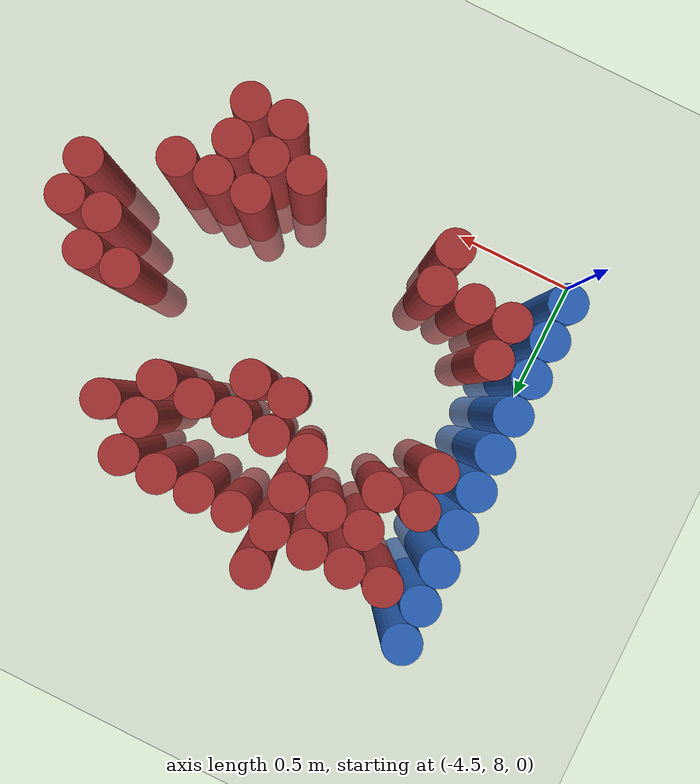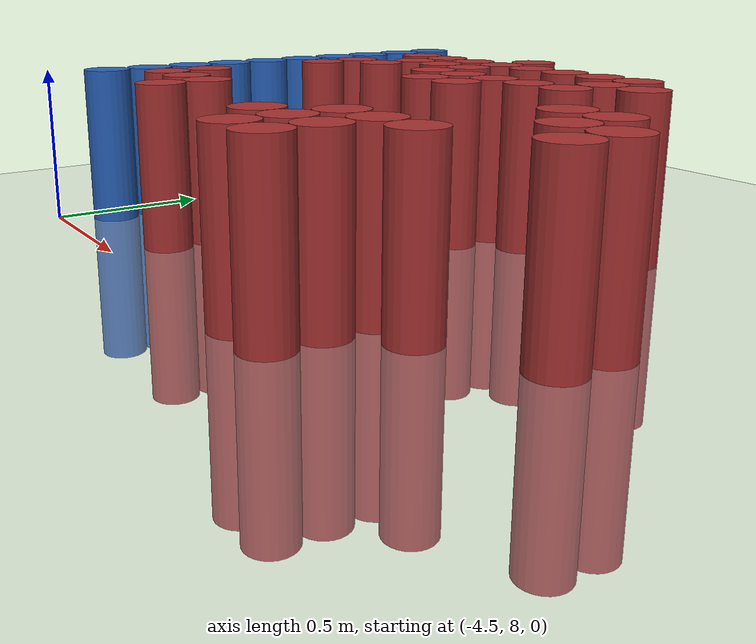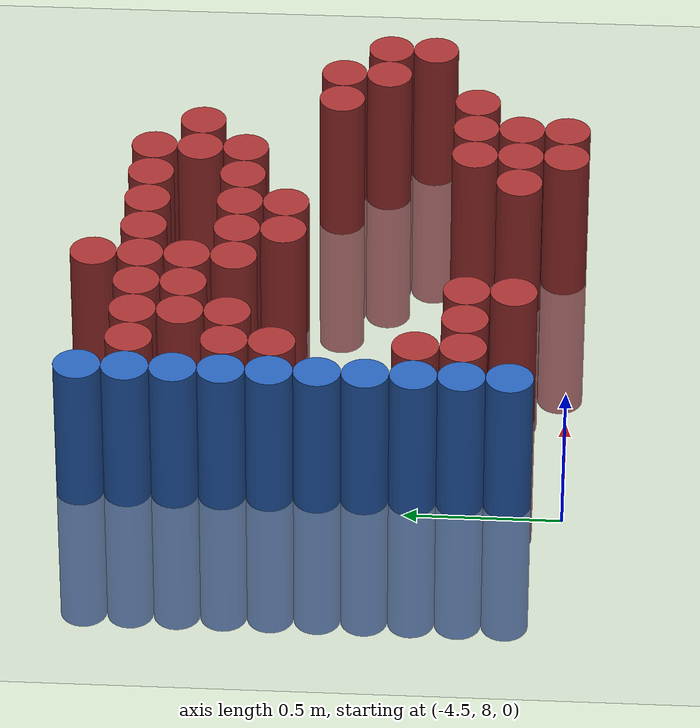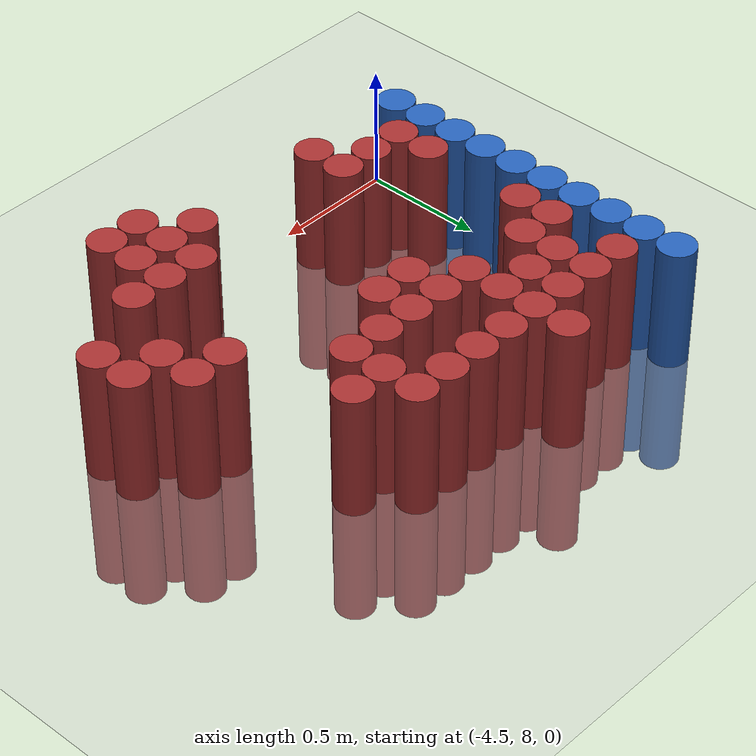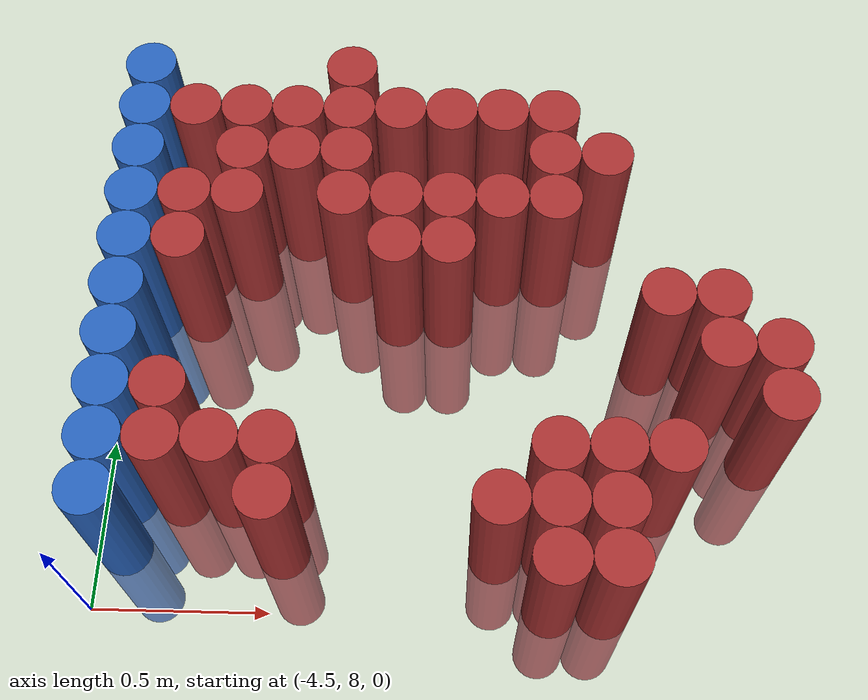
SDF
<sdf version="1.6">
 <world name="default">
  <model name="ground_plane">
   <static>1</static>
   <link name="link">
    <collision name="collision">
     <geometry><plane><normal>0 0 1</normal><size>100 100</size></plane></geometry>
     <surface><friction><ode><mu>100</mu><mu2>50</mu2></ode></friction></surface>
    </collision>
    <visual name="visual">
     <cast_shadows>0</cast_shadows>
     <geometry><plane><normal>0 0 1</normal><size>100 100</size></plane></geometry>
     <material>
      <script><uri>file://media/materials/scripts/gazebo.material</uri><name>Gazebo/Grey</name></script>
     </material>
    </visual>
   </link>
  </model>
  <model name="unit_cylinder_116">
   <static>1</static>
   <pose>-4.425000 8.175000 0.000000 0.000000 0.000000 0.000000</pose>
   <link name="link">
    <inertial>
     <mass>1</mass>
     <inertia><ixx>0.145833</ixx><ixy>0</ixy><ixz>0</ixz><iyy>0.145833</iyy><iyz>0</iyz><izz>0.125</izz></inertia>
    </inertial>
    <collision name="collision">
     <geometry><cylinder><radius>0.075000</radius><length>1</length></cylinder></geometry>
    </collision>
    <visual name="visual">
     <geometry><cylinder><radius>0.075000</radius><length>1</length></cylinder></geometry>
     <material>
      <ambient>0.152000 0.379000 0.720000 1</ambient>
      <diffuse>0.152000 0.379000 0.720000 1</diffuse>
     </material>
     <material>
      <script><name>Gazebo/Grey</name><uri>file://media/materials/scripts/gazebo.material</uri></script>
     </material>
    </visual>
   </link>
  </model>
  <model name="unit_cylinder_117">
   <static>1</static>
   <pose>-4.425000 8.325000 0.000000 0.000000 0.000000 0.000000</pose>
   <link name="link">
    <inertial>
     <mass>1</mass>
     <inertia><ixx>0.145833</ixx><ixy>0</ixy><ixz>0</ixz><iyy>0.145833</iyy><iyz>0</iyz><izz>0.125</izz></inertia>
    </inertial>
    <collision name="collision">
     <geometry><cylinder><radius>0.075000</radius><length>1</length></cylinder></geometry>
    </collision>
    <visual name="visual">
     <geometry><cylinder><radius>0.075000</radius><length>1</length></cylinder></geometry>
     <material>
      <ambient>0.152000 0.379000 0.720000 1</ambient>
      <diffuse>0.152000 0.379000 0.720000 1</diffuse>
     </material>
     <material>
      <script><name>Gazebo/Grey</name><uri>file://media/materials/scripts/gazebo.material</uri></script>
     </material>
    </visual>
   </link>
  </model>
  <model name="unit_cylinder_118">
   <static>1</static>
   <pose>-4.425000 8.475000 0.000000 0.000000 0.000000 0.000000</pose>
   <link name="link">
    <inertial>
     <mass>1</mass>
     <inertia><ixx>0.145833</ixx><ixy>0</ixy><ixz>0</ixz><iyy>0.145833</iyy><iyz>0</iyz><izz>0.125</izz></inertia>
    </inertial>
    <collision name="collision">
     <geometry><cylinder><radius>0.075000</radius><length>1</length></cylinder></geometry>
    </collision>
    <visual name="visual">
     <geometry><cylinder><radius>0.075000</radius><length>1</length></cylinder></geometry>
     <material>
      <ambient>0.152000 0.379000 0.720000 1</ambient>
      <diffuse>0.152000 0.379000 0.720000 1</diffuse>
     </material>
     <material>
      <script><name>Gazebo/Grey</name><uri>file://media/materials/scripts/gazebo.material</uri></script>
     </material>
    </visual>
   </link>
  </model>
  <model name="unit_cylinder_119">
   <static>1</static>
   <pose>-4.425000 8.625000 0.000000 0.000000 0.000000 0.000000</pose>
   <link name="link">
    <inertial>
     <mass>1</mass>
     <inertia><ixx>0.145833</ixx><ixy>0</ixy><ixz>0</ixz><iyy>0.145833</iyy><iyz>0</iyz><izz>0.125</izz></inertia>
    </inertial>
    <collision name="collision">
     <geometry><cylinder><radius>0.075000</radius><length>1</length></cylinder></geometry>
    </collision>
    <visual name="visual">
     <geometry><cylinder><radius>0.075000</radius><length>1</length></cylinder></geometry>
     <material>
      <ambient>0.152000 0.379000 0.720000 1</ambient>
      <diffuse>0.152000 0.379000 0.720000 1</diffuse>
     </material>
     <material>
      <script><name>Gazebo/Grey</name><uri>file://media/materials/scripts/gazebo.material</uri></script>
     </material>
    </visual>
   </link>
  </model>
  <model name="unit_cylinder_120">
   <static>1</static>
   <pose>-4.425000 8.775000 0.000000 0.000000 0.000000 0.000000</pose>
   <link name="link">
    <inertial>
     <mass>1</mass>
     <inertia><ixx>0.145833</ixx><ixy>0</ixy><ixz>0</ixz><iyy>0.145833</iyy><iyz>0</iyz><izz>0.125</izz></inertia>
    </inertial>
    <collision name="collision">
     <geometry><cylinder><radius>0.075000</radius><length>1</length></cylinder></geometry>
    </collision>
    <visual name="visual">
     <geometry><cylinder><radius>0.075000</radius><length>1</length></cylinder></geometry>
     <material>
      <ambient>0.152000 0.379000 0.720000 1</ambient>
      <diffuse>0.152000 0.379000 0.720000 1</diffuse>
     </material>
     <material>
      <script><name>Gazebo/Grey</name><uri>file://media/materials/scripts/gazebo.material</uri></script>
     </material>
    </visual>
   </link>
  </model>
  <model name="unit_cylinder_121">
   <static>1</static>
   <pose>-4.425000 8.925000 0.000000 0.000000 0.000000 0.000000</pose>
   <link name="link">
    <inertial>
     <mass>1</mass>
     <inertia><ixx>0.145833</ixx><ixy>0</ixy><ixz>0</ixz><iyy>0.145833</iyy><iyz>0</iyz><izz>0.125</izz></inertia>
    </inertial>
    <collision name="collision">
     <geometry><cylinder><radius>0.075000</radius><length>1</length></cylinder></geometry>
    </collision>
    <visual name="visual">
     <geometry><cylinder><radius>0.075000</radius><length>1</length></cylinder></geometry>
     <material>
      <ambient>0.152000 0.379000 0.720000 1</ambient>
      <diffuse>0.152000 0.379000 0.720000 1</diffuse>
     </material>
     <material>
      <script><name>Gazebo/Grey</name><uri>file://media/materials/scripts/gazebo.material</uri></script>
     </material>
    </visual>
   </link>
  </model>
  <model name="unit_cylinder_122">
   <static>1</static>
   <pose>-4.425000 9.075000 0.000000 0.000000 0.000000 0.000000</pose>
   <link name="link">
    <inertial>
     <mass>1</mass>
     <inertia><ixx>0.145833</ixx><ixy>0</ixy><ixz>0</ixz><iyy>0.145833</iyy><iyz>0</iyz><izz>0.125</izz></inertia>
    </inertial>
    <collision name="collision">
     <geometry><cylinder><radius>0.075000</radius><length>1</length></cylinder></geometry>
    </collision>
    <visual name="visual">
     <geometry><cylinder><radius>0.075000</radius><length>1</length></cylinder></geometry>
     <material>
      <ambient>0.152000 0.379000 0.720000 1</ambient>
      <diffuse>0.152000 0.379000 0.720000 1</diffuse>
     </material>
     <material>
      <script><name>Gazebo/Grey</name><uri>file://media/materials/scripts/gazebo.material</uri></script>
     </material>
    </visual>
   </link>
  </model>
  <model name="unit_cylinder_123">
   <static>1</static>
   <pose>-4.425000 9.225000 0.000000 0.000000 0.000000 0.000000</pose>
   <link name="link">
    <inertial>
     <mass>1</mass>
     <inertia><ixx>0.145833</ixx><ixy>0</ixy><ixz>0</ixz><iyy>0.145833</iyy><iyz>0</iyz><izz>0.125</izz></inertia>
    </inertial>
    <collision name="collision">
     <geometry><cylinder><radius>0.075000</radius><length>1</length></cylinder></geometry>
    </collision>
    <visual name="visual">
     <geometry><cylinder><radius>0.075000</radius><length>1</length></cylinder></geometry>
     <material>
      <ambient>0.152000 0.379000 0.720000 1</ambient>
      <diffuse>0.152000 0.379000 0.720000 1</diffuse>
     </material>
     <material>
      <script><name>Gazebo/Grey</name><uri>file://media/materials/scripts/gazebo.material</uri></script>
     </material>
    </visual>
   </link>
  </model>
  <model name="unit_cylinder_124">
   <static>1</static>
   <pose>-4.425000 9.375000 0.000000 0.000000 0.000000 0.000000</pose>
   <link name="link">
    <inertial>
     <mass>1</mass>
     <inertia><ixx>0.145833</ixx><ixy>0</ixy><ixz>0</ixz><iyy>0.145833</iyy><iyz>0</iyz><izz>0.125</izz></inertia>
    </inertial>
    <collision name="collision">
     <geometry><cylinder><radius>0.075000</radius><length>1</length></cylinder></geometry>
    </collision>
    <visual name="visual">
     <geometry><cylinder><radius>0.075000</radius><length>1</length></cylinder></geometry>
     <material>
      <ambient>0.152000 0.379000 0.720000 1</ambient>
      <diffuse>0.152000 0.379000 0.720000 1</diffuse>
     </material>
     <material>
      <script><name>Gazebo/Grey</name><uri>file://media/materials/scripts/gazebo.material</uri></script>
     </material>
    </visual>
   </link>
  </model>
  <model name="unit_cylinder_125">
   <static>1</static>
   <pose>-4.425000 9.525000 0.000000 0.000000 0.000000 0.000000</pose>
   <link name="link">
    <inertial>
     <mass>1</mass>
     <inertia><ixx>0.145833</ixx><ixy>0</ixy><ixz>0</ixz><iyy>0.145833</iyy><iyz>0</iyz><izz>0.125</izz></inertia>
    </inertial>
    <collision name="collision">
     <geometry><cylinder><radius>0.075000</radius><length>1</length></cylinder></geometry>
    </collision>
    <visual name="visual">
     <geometry><cylinder><radius>0.075000</radius><length>1</length></cylinder></geometry>
     <material>
      <ambient>0.152000 0.379000 0.720000 1</ambient>
      <diffuse>0.152000 0.379000 0.720000 1</diffuse>
     </material>
     <material>
      <script><name>Gazebo/Grey</name><uri>file://media/materials/scripts/gazebo.material</uri></script>
     </material>
    </visual>
   </link>
  </model>
  <model name="unit_cylinder_132">
   <static>1</static>
   <pose>-4.275000 8.325000 0.000000 0.000000 0.000000 0.000000</pose>
   <link name="link">
    <inertial>
     <mass>1</mass>
     <inertia><ixx>0.145833</ixx><ixy>0</ixy><ixz>0</ixz><iyy>0.145833</iyy><iyz>0</iyz><izz>0.125</izz></inertia>
    </inertial>
    <collision name="collision">
     <geometry><cylinder><radius>0.075000</radius><length>1</length></cylinder></geometry>
    </collision>
    <visual name="visual">
     <geometry><cylinder><radius>0.075000</radius><length>1</length></cylinder></geometry>
     <material>
      <ambient>0.648000 0.192000 0.192000 1</ambient>
      <diffuse>0.648000 0.192000 0.192000 1</diffuse>
     </material>
     <material>
      <script><name>Gazebo/Grey</name><uri>file://media/materials/scripts/gazebo.material</uri></script>
     </material>
    </visual>
   </link>
  </model>
  <model name="unit_cylinder_133">
   <static>1</static>
   <pose>-4.275000 8.475000 0.000000 0.000000 0.000000 0.000000</pose>
   <link name="link">
    <inertial>
     <mass>1</mass>
     <inertia><ixx>0.145833</ixx><ixy>0</ixy><ixz>0</ixz><iyy>0.145833</iyy><iyz>0</iyz><izz>0.125</izz></inertia>
    </inertial>
    <collision name="collision">
     <geometry><cylinder><radius>0.075000</radius><length>1</length></cylinder></geometry>
    </collision>
    <visual name="visual">
     <geometry><cylinder><radius>0.075000</radius><length>1</length></cylinder></geometry>
     <material>
      <ambient>0.648000 0.192000 0.192000 1</ambient>
      <diffuse>0.648000 0.192000 0.192000 1</diffuse>
     </material>
     <material>
      <script><name>Gazebo/Grey</name><uri>file://media/materials/scripts/gazebo.material</uri></script>
     </material>
    </visual>
   </link>
  </model>
  <model name="unit_cylinder_134">
   <static>1</static>
   <pose>-4.275000 8.925000 0.000000 0.000000 0.000000 0.000000</pose>
   <link name="link">
    <inertial>
     <mass>1</mass>
     <inertia><ixx>0.145833</ixx><ixy>0</ixy><ixz>0</ixz><iyy>0.145833</iyy><iyz>0</iyz><izz>0.125</izz></inertia>
    </inertial>
    <collision name="collision">
     <geometry><cylinder><radius>0.075000</radius><length>1</length></cylinder></geometry>
    </collision>
    <visual name="visual">
     <geometry><cylinder><radius>0.075000</radius><length>1</length></cylinder></geometry>
     <material>
      <ambient>0.648000 0.192000 0.192000 1</ambient>
      <diffuse>0.648000 0.192000 0.192000 1</diffuse>
     </material>
     <material>
      <script><name>Gazebo/Grey</name><uri>file://media/materials/scripts/gazebo.material</uri></script>
     </material>
    </visual>
   </link>
  </model>
  <model name="unit_cylinder_135">
   <static>1</static>
   <pose>-4.275000 9.075000 0.000000 0.000000 0.000000 0.000000</pose>
   <link name="link">
    <inertial>
     <mass>1</mass>
     <inertia><ixx>0.145833</ixx><ixy>0</ixy><ixz>0</ixz><iyy>0.145833</iyy><iyz>0</iyz><izz>0.125</izz></inertia>
    </inertial>
    <collision name="collision">
     <geometry><cylinder><radius>0.075000</radius><length>1</length></cylinder></geometry>
    </collision>
    <visual name="visual">
     <geometry><cylinder><radius>0.075000</radius><length>1</length></cylinder></geometry>
     <material>
      <ambient>0.648000 0.192000 0.192000 1</ambient>
      <diffuse>0.648000 0.192000 0.192000 1</diffuse>
     </material>
     <material>
      <script><name>Gazebo/Grey</name><uri>file://media/materials/scripts/gazebo.material</uri></script>
     </material>
    </visual>
   </link>
  </model>
  <model name="unit_cylinder_136">
   <static>1</static>
   <pose>-4.275000 9.375000 0.000000 0.000000 0.000000 0.000000</pose>
   <link name="link">
    <inertial>
     <mass>1</mass>
     <inertia><ixx>0.145833</ixx><ixy>0</ixy><ixz>0</ixz><iyy>0.145833</iyy><iyz>0</iyz><izz>0.125</izz></inertia>
    </inertial>
    <collision name="collision">
     <geometry><cylinder><radius>0.075000</radius><length>1</length></cylinder></geometry>
    </collision>
    <visual name="visual">
     <geometry><cylinder><radius>0.075000</radius><length>1</length></cylinder></geometry>
     <material>
      <ambient>0.648000 0.192000 0.192000 1</ambient>
      <diffuse>0.648000 0.192000 0.192000 1</diffuse>
     </material>
     <material>
      <script><name>Gazebo/Grey</name><uri>file://media/materials/scripts/gazebo.material</uri></script>
     </material>
    </visual>
   </link>
  </model>
  <model name="unit_cylinder_140">
   <static>1</static>
   <pose>-4.125000 8.325000 0.000000 0.000000 0.000000 0.000000</pose>
   <link name="link">
    <inertial>
     <mass>1</mass>
     <inertia><ixx>0.145833</ixx><ixy>0</ixy><ixz>0</ixz><iyy>0.145833</iyy><iyz>0</iyz><izz>0.125</izz></inertia>
    </inertial>
    <collision name="collision">
     <geometry><cylinder><radius>0.075000</radius><length>1</length></cylinder></geometry>
    </collision>
    <visual name="visual">
     <geometry><cylinder><radius>0.075000</radius><length>1</length></cylinder></geometry>
     <material>
      <ambient>0.648000 0.192000 0.192000 1</ambient>
      <diffuse>0.648000 0.192000 0.192000 1</diffuse>
     </material>
     <material>
      <script><name>Gazebo/Grey</name><uri>file://media/materials/scripts/gazebo.material</uri></script>
     </material>
    </visual>
   </link>
  </model>
  <model name="unit_cylinder_141">
   <static>1</static>
   <pose>-4.125000 9.075000 0.000000 0.000000 0.000000 0.000000</pose>
   <link name="link">
    <inertial>
     <mass>1</mass>
     <inertia><ixx>0.145833</ixx><ixy>0</ixy><ixz>0</ixz><iyy>0.145833</iyy><iyz>0</iyz><izz>0.125</izz></inertia>
    </inertial>
    <collision name="collision">
     <geometry><cylinder><radius>0.075000</radius><length>1</length></cylinder></geometry>
    </collision>
    <visual name="visual">
     <geometry><cylinder><radius>0.075000</radius><length>1</length></cylinder></geometry>
     <material>
      <ambient>0.648000 0.192000 0.192000 1</ambient>
      <diffuse>0.648000 0.192000 0.192000 1</diffuse>
     </material>
     <material>
      <script><name>Gazebo/Grey</name><uri>file://media/materials/scripts/gazebo.material</uri></script>
     </material>
    </visual>
   </link>
  </model>
  <model name="unit_cylinder_142">
   <static>1</static>
   <pose>-4.125000 9.225000 0.000000 0.000000 0.000000 0.000000</pose>
   <link name="link">
    <inertial>
     <mass>1</mass>
     <inertia><ixx>0.145833</ixx><ixy>0</ixy><ixz>0</ixz><iyy>0.145833</iyy><iyz>0</iyz><izz>0.125</izz></inertia>
    </inertial>
    <collision name="collision">
     <geometry><cylinder><radius>0.075000</radius><length>1</length></cylinder></geometry>
    </collision>
    <visual name="visual">
     <geometry><cylinder><radius>0.075000</radius><length>1</length></cylinder></geometry>
     <material>
      <ambient>0.648000 0.192000 0.192000 1</ambient>
      <diffuse>0.648000 0.192000 0.192000 1</diffuse>
     </material>
     <material>
      <script><name>Gazebo/Grey</name><uri>file://media/materials/scripts/gazebo.material</uri></script>
     </material>
    </visual>
   </link>
  </model>
  <model name="unit_cylinder_143">
   <static>1</static>
   <pose>-4.125000 9.375000 0.000000 0.000000 0.000000 0.000000</pose>
   <link name="link">
    <inertial>
     <mass>1</mass>
     <inertia><ixx>0.145833</ixx><ixy>0</ixy><ixz>0</ixz><iyy>0.145833</iyy><iyz>0</iyz><izz>0.125</izz></inertia>
    </inertial>
    <collision name="collision">
     <geometry><cylinder><radius>0.075000</radius><length>1</length></cylinder></geometry>
    </collision>
    <visual name="visual">
     <geometry><cylinder><radius>0.075000</radius><length>1</length></cylinder></geometry>
     <material>
      <ambient>0.648000 0.192000 0.192000 1</ambient>
      <diffuse>0.648000 0.192000 0.192000 1</diffuse>
     </material>
     <material>
      <script><name>Gazebo/Grey</name><uri>file://media/materials/scripts/gazebo.material</uri></script>
     </material>
    </visual>
   </link>
  </model>
  <model name="unit_cylinder_152">
   <static>1</static>
   <pose>-3.975000 8.175000 0.000000 0.000000 0.000000 0.000000</pose>
   <link name="link">
    <inertial>
     <mass>1</mass>
     <inertia><ixx>0.145833</ixx><ixy>0</ixy><ixz>0</ixz><iyy>0.145833</iyy><iyz>0</iyz><izz>0.125</izz></inertia>
    </inertial>
    <collision name="collision">
     <geometry><cylinder><radius>0.075000</radius><length>1</length></cylinder></geometry>
    </collision>
    <visual name="visual">
     <geometry><cylinder><radius>0.075000</radius><length>1</length></cylinder></geometry>
     <material>
      <ambient>0.648000 0.192000 0.192000 1</ambient>
      <diffuse>0.648000 0.192000 0.192000 1</diffuse>
     </material>
     <material>
      <script><name>Gazebo/Grey</name><uri>file://media/materials/scripts/gazebo.material</uri></script>
     </material>
    </visual>
   </link>
  </model>
  <model name="unit_cylinder_153">
   <static>1</static>
   <pose>-3.975000 8.325000 0.000000 0.000000 0.000000 0.000000</pose>
   <link name="link">
    <inertial>
     <mass>1</mass>
     <inertia><ixx>0.145833</ixx><ixy>0</ixy><ixz>0</ixz><iyy>0.145833</iyy><iyz>0</iyz><izz>0.125</izz></inertia>
    </inertial>
    <collision name="collision">
     <geometry><cylinder><radius>0.075000</radius><length>1</length></cylinder></geometry>
    </collision>
    <visual name="visual">
     <geometry><cylinder><radius>0.075000</radius><length>1</length></cylinder></geometry>
     <material>
      <ambient>0.648000 0.192000 0.192000 1</ambient>
      <diffuse>0.648000 0.192000 0.192000 1</diffuse>
     </material>
     <material>
      <script><name>Gazebo/Grey</name><uri>file://media/materials/scripts/gazebo.material</uri></script>
     </material>
    </visual>
   </link>
  </model>
  <model name="unit_cylinder_154">
   <static>1</static>
   <pose>-3.975000 9.225000 0.000000 0.000000 0.000000 0.000000</pose>
   <link name="link">
    <inertial>
     <mass>1</mass>
     <inertia><ixx>0.145833</ixx><ixy>0</ixy><ixz>0</ixz><iyy>0.145833</iyy><iyz>0</iyz><izz>0.125</izz></inertia>
    </inertial>
    <collision name="collision">
     <geometry><cylinder><radius>0.075000</radius><length>1</length></cylinder></geometry>
    </collision>
    <visual name="visual">
     <geometry><cylinder><radius>0.075000</radius><length>1</length></cylinder></geometry>
     <material>
      <ambient>0.648000 0.192000 0.192000 1</ambient>
      <diffuse>0.648000 0.192000 0.192000 1</diffuse>
     </material>
     <material>
      <script><name>Gazebo/Grey</name><uri>file://media/materials/scripts/gazebo.material</uri></script>
     </material>
    </visual>
   </link>
  </model>
  <model name="unit_cylinder_155">
   <static>1</static>
   <pose>-3.975000 9.375000 0.000000 0.000000 0.000000 0.000000</pose>
   <link name="link">
    <inertial>
     <mass>1</mass>
     <inertia><ixx>0.145833</ixx><ixy>0</ixy><ixz>0</ixz><iyy>0.145833</iyy><iyz>0</iyz><izz>0.125</izz></inertia>
    </inertial>
    <collision name="collision">
     <geometry><cylinder><radius>0.075000</radius><length>1</length></cylinder></geometry>
    </collision>
    <visual name="visual">
     <geometry><cylinder><radius>0.075000</radius><length>1</length></cylinder></geometry>
     <material>
      <ambient>0.648000 0.192000 0.192000 1</ambient>
      <diffuse>0.648000 0.192000 0.192000 1</diffuse>
     </material>
     <material>
      <script><name>Gazebo/Grey</name><uri>file://media/materials/scripts/gazebo.material</uri></script>
     </material>
    </visual>
   </link>
  </model>
  <model name="unit_cylinder_164">
   <static>1</static>
   <pose>-3.825000 9.075000 0.000000 0.000000 0.000000 0.000000</pose>
   <link name="link">
    <inertial>
     <mass>1</mass>
     <inertia><ixx>0.145833</ixx><ixy>0</ixy><ixz>0</ixz><iyy>0.145833</iyy><iyz>0</iyz><izz>0.125</izz></inertia>
    </inertial>
    <collision name="collision">
     <geometry><cylinder><radius>0.075000</radius><length>1</length></cylinder></geometry>
    </collision>
    <visual name="visual">
     <geometry><cylinder><radius>0.075000</radius><length>1</length></cylinder></geometry>
     <material>
      <ambient>0.648000 0.192000 0.192000 1</ambient>
      <diffuse>0.648000 0.192000 0.192000 1</diffuse>
     </material>
     <material>
      <script><name>Gazebo/Grey</name><uri>file://media/materials/scripts/gazebo.material</uri></script>
     </material>
    </visual>
   </link>
  </model>
  <model name="unit_cylinder_165">
   <static>1</static>
   <pose>-3.825000 9.225000 0.000000 0.000000 0.000000 0.000000</pose>
   <link name="link">
    <inertial>
     <mass>1</mass>
     <inertia><ixx>0.145833</ixx><ixy>0</ixy><ixz>0</ixz><iyy>0.145833</iyy><iyz>0</iyz><izz>0.125</izz></inertia>
    </inertial>
    <collision name="collision">
     <geometry><cylinder><radius>0.075000</radius><length>1</length></cylinder></geometry>
    </collision>
    <visual name="visual">
     <geometry><cylinder><radius>0.075000</radius><length>1</length></cylinder></geometry>
     <material>
      <ambient>0.648000 0.192000 0.192000 1</ambient>
      <diffuse>0.648000 0.192000 0.192000 1</diffuse>
     </material>
     <material>
      <script><name>Gazebo/Grey</name><uri>file://media/materials/scripts/gazebo.material</uri></script>
     </material>
    </visual>
   </link>
  </model>
  <model name="unit_cylinder_166">
   <static>1</static>
   <pose>-3.825000 9.375000 0.000000 0.000000 0.000000 0.000000</pose>
   <link name="link">
    <inertial>
     <mass>1</mass>
     <inertia><ixx>0.145833</ixx><ixy>0</ixy><ixz>0</ixz><iyy>0.145833</iyy><iyz>0</iyz><izz>0.125</izz></inertia>
    </inertial>
    <collision name="collision">
     <geometry><cylinder><radius>0.075000</radius><length>1</length></cylinder></geometry>
    </collision>
    <visual name="visual">
     <geometry><cylinder><radius>0.075000</radius><length>1</length></cylinder></geometry>
     <material>
      <ambient>0.648000 0.192000 0.192000 1</ambient>
      <diffuse>0.648000 0.192000 0.192000 1</diffuse>
     </material>
     <material>
      <script><name>Gazebo/Grey</name><uri>file://media/materials/scripts/gazebo.material</uri></script>
     </material>
    </visual>
   </link>
  </model>
  <model name="unit_cylinder_167">
   <static>1</static>
   <pose>-3.825000 9.525000 0.000000 0.000000 0.000000 0.000000</pose>
   <link name="link">
    <inertial>
     <mass>1</mass>
     <inertia><ixx>0.145833</ixx><ixy>0</ixy><ixz>0</ixz><iyy>0.145833</iyy><iyz>0</iyz><izz>0.125</izz></inertia>
    </inertial>
    <collision name="collision">
     <geometry><cylinder><radius>0.075000</radius><length>1</length></cylinder></geometry>
    </collision>
    <visual name="visual">
     <geometry><cylinder><radius>0.075000</radius><length>1</length></cylinder></geometry>
     <material>
      <ambient>0.648000 0.192000 0.192000 1</ambient>
      <diffuse>0.648000 0.192000 0.192000 1</diffuse>
     </material>
     <material>
      <script><name>Gazebo/Grey</name><uri>file://media/materials/scripts/gazebo.material</uri></script>
     </material>
    </visual>
   </link>
  </model>
  <model name="unit_cylinder_176">
   <static>1</static>
   <pose>-3.675000 8.925000 0.000000 0.000000 0.000000 0.000000</pose>
   <link name="link">
    <inertial>
     <mass>1</mass>
     <inertia><ixx>0.145833</ixx><ixy>0</ixy><ixz>0</ixz><iyy>0.145833</iyy><iyz>0</iyz><izz>0.125</izz></inertia>
    </inertial>
    <collision name="collision">
     <geometry><cylinder><radius>0.075000</radius><length>1</length></cylinder></geometry>
    </collision>
    <visual name="visual">
     <geometry><cylinder><radius>0.075000</radius><length>1</length></cylinder></geometry>
     <material>
      <ambient>0.648000 0.192000 0.192000 1</ambient>
      <diffuse>0.648000 0.192000 0.192000 1</diffuse>
     </material>
     <material>
      <script><name>Gazebo/Grey</name><uri>file://media/materials/scripts/gazebo.material</uri></script>
     </material>
    </visual>
   </link>
  </model>
  <model name="unit_cylinder_177">
   <static>1</static>
   <pose>-3.675000 9.075000 0.000000 0.000000 0.000000 0.000000</pose>
   <link name="link">
    <inertial>
     <mass>1</mass>
     <inertia><ixx>0.145833</ixx><ixy>0</ixy><ixz>0</ixz><iyy>0.145833</iyy><iyz>0</iyz><izz>0.125</izz></inertia>
    </inertial>
    <collision name="collision">
     <geometry><cylinder><radius>0.075000</radius><length>1</length></cylinder></geometry>
    </collision>
    <visual name="visual">
     <geometry><cylinder><radius>0.075000</radius><length>1</length></cylinder></geometry>
     <material>
      <ambient>0.648000 0.192000 0.192000 1</ambient>
      <diffuse>0.648000 0.192000 0.192000 1</diffuse>
     </material>
     <material>
      <script><name>Gazebo/Grey</name><uri>file://media/materials/scripts/gazebo.material</uri></script>
     </material>
    </visual>
   </link>
  </model>
  <model name="unit_cylinder_178">
   <static>1</static>
   <pose>-3.675000 9.375000 0.000000 0.000000 0.000000 0.000000</pose>
   <link name="link">
    <inertial>
     <mass>1</mass>
     <inertia><ixx>0.145833</ixx><ixy>0</ixy><ixz>0</ixz><iyy>0.145833</iyy><iyz>0</iyz><izz>0.125</izz></inertia>
    </inertial>
    <collision name="collision">
     <geometry><cylinder><radius>0.075000</radius><length>1</length></cylinder></geometry>
    </collision>
    <visual name="visual">
     <geometry><cylinder><radius>0.075000</radius><length>1</length></cylinder></geometry>
     <material>
      <ambient>0.648000 0.192000 0.192000 1</ambient>
      <diffuse>0.648000 0.192000 0.192000 1</diffuse>
     </material>
     <material>
      <script><name>Gazebo/Grey</name><uri>file://media/materials/scripts/gazebo.material</uri></script>
     </material>
    </visual>
   </link>
  </model>
  <model name="unit_cylinder_182">
   <static>1</static>
   <pose>-3.525000 8.925000 0.000000 0.000000 0.000000 0.000000</pose>
   <link name="link">
    <inertial>
     <mass>1</mass>
     <inertia><ixx>0.145833</ixx><ixy>0</ixy><ixz>0</ixz><iyy>0.145833</iyy><iyz>0</iyz><izz>0.125</izz></inertia>
    </inertial>
    <collision name="collision">
     <geometry><cylinder><radius>0.075000</radius><length>1</length></cylinder></geometry>
    </collision>
    <visual name="visual">
     <geometry><cylinder><radius>0.075000</radius><length>1</length></cylinder></geometry>
     <material>
      <ambient>0.648000 0.192000 0.192000 1</ambient>
      <diffuse>0.648000 0.192000 0.192000 1</diffuse>
     </material>
     <material>
      <script><name>Gazebo/Grey</name><uri>file://media/materials/scripts/gazebo.material</uri></script>
     </material>
    </visual>
   </link>
  </model>
  <model name="unit_cylinder_183">
   <static>1</static>
   <pose>-3.525000 9.075000 0.000000 0.000000 0.000000 0.000000</pose>
   <link name="link">
    <inertial>
     <mass>1</mass>
     <inertia><ixx>0.145833</ixx><ixy>0</ixy><ixz>0</ixz><iyy>0.145833</iyy><iyz>0</iyz><izz>0.125</izz></inertia>
    </inertial>
    <collision name="collision">
     <geometry><cylinder><radius>0.075000</radius><length>1</length></cylinder></geometry>
    </collision>
    <visual name="visual">
     <geometry><cylinder><radius>0.075000</radius><length>1</length></cylinder></geometry>
     <material>
      <ambient>0.648000 0.192000 0.192000 1</ambient>
      <diffuse>0.648000 0.192000 0.192000 1</diffuse>
     </material>
     <material>
      <script><name>Gazebo/Grey</name><uri>file://media/materials/scripts/gazebo.material</uri></script>
     </material>
    </visual>
   </link>
  </model>
  <model name="unit_cylinder_184">
   <static>1</static>
   <pose>-3.525000 9.375000 0.000000 0.000000 0.000000 0.000000</pose>
   <link name="link">
    <inertial>
     <mass>1</mass>
     <inertia><ixx>0.145833</ixx><ixy>0</ixy><ixz>0</ixz><iyy>0.145833</iyy><iyz>0</iyz><izz>0.125</izz></inertia>
    </inertial>
    <collision name="collision">
     <geometry><cylinder><radius>0.075000</radius><length>1</length></cylinder></geometry>
    </collision>
    <visual name="visual">
     <geometry><cylinder><radius>0.075000</radius><length>1</length></cylinder></geometry>
     <material>
      <ambient>0.648000 0.192000 0.192000 1</ambient>
      <diffuse>0.648000 0.192000 0.192000 1</diffuse>
     </material>
     <material>
      <script><name>Gazebo/Grey</name><uri>file://media/materials/scripts/gazebo.material</uri></script>
     </material>
    </visual>
   </link>
  </model>
  <model name="unit_cylinder_190">
   <static>1</static>
   <pose>-3.375000 8.175000 0.000000 0.000000 0.000000 0.000000</pose>
   <link name="link">
    <inertial>
     <mass>1</mass>
     <inertia><ixx>0.145833</ixx><ixy>0</ixy><ixz>0</ixz><iyy>0.145833</iyy><iyz>0</iyz><izz>0.125</izz></inertia>
    </inertial>
    <collision name="collision">
     <geometry><cylinder><radius>0.075000</radius><length>1</length></cylinder></geometry>
    </collision>
    <visual name="visual">
     <geometry><cylinder><radius>0.075000</radius><length>1</length></cylinder></geometry>
     <material>
      <ambient>0.648000 0.192000 0.192000 1</ambient>
      <diffuse>0.648000 0.192000 0.192000 1</diffuse>
     </material>
     <material>
      <script><name>Gazebo/Grey</name><uri>file://media/materials/scripts/gazebo.material</uri></script>
     </material>
    </visual>
   </link>
  </model>
  <model name="unit_cylinder_191">
   <static>1</static>
   <pose>-3.375000 9.075000 0.000000 0.000000 0.000000 0.000000</pose>
   <link name="link">
    <inertial>
     <mass>1</mass>
     <inertia><ixx>0.145833</ixx><ixy>0</ixy><ixz>0</ixz><iyy>0.145833</iyy><iyz>0</iyz><izz>0.125</izz></inertia>
    </inertial>
    <collision name="collision">
     <geometry><cylinder><radius>0.075000</radius><length>1</length></cylinder></geometry>
    </collision>
    <visual name="visual">
     <geometry><cylinder><radius>0.075000</radius><length>1</length></cylinder></geometry>
     <material>
      <ambient>0.648000 0.192000 0.192000 1</ambient>
      <diffuse>0.648000 0.192000 0.192000 1</diffuse>
     </material>
     <material>
      <script><name>Gazebo/Grey</name><uri>file://media/materials/scripts/gazebo.material</uri></script>
     </material>
    </visual>
   </link>
  </model>
  <model name="unit_cylinder_192">
   <static>1</static>
   <pose>-3.375000 9.375000 0.000000 0.000000 0.000000 0.000000</pose>
   <link name="link">
    <inertial>
     <mass>1</mass>
     <inertia><ixx>0.145833</ixx><ixy>0</ixy><ixz>0</ixz><iyy>0.145833</iyy><iyz>0</iyz><izz>0.125</izz></inertia>
    </inertial>
    <collision name="collision">
     <geometry><cylinder><radius>0.075000</radius><length>1</length></cylinder></geometry>
    </collision>
    <visual name="visual">
     <geometry><cylinder><radius>0.075000</radius><length>1</length></cylinder></geometry>
     <material>
      <ambient>0.648000 0.192000 0.192000 1</ambient>
      <diffuse>0.648000 0.192000 0.192000 1</diffuse>
     </material>
     <material>
      <script><name>Gazebo/Grey</name><uri>file://media/materials/scripts/gazebo.material</uri></script>
     </material>
    </visual>
   </link>
  </model>
  <model name="unit_cylinder_201">
   <static>1</static>
   <pose>-3.225000 8.025000 0.000000 0.000000 0.000000 0.000000</pose>
   <link name="link">
    <inertial>
     <mass>1</mass>
     <inertia><ixx>0.145833</ixx><ixy>0</ixy><ixz>0</ixz><iyy>0.145833</iyy><iyz>0</iyz><izz>0.125</izz></inertia>
    </inertial>
    <collision name="collision">
     <geometry><cylinder><radius>0.075000</radius><length>1</length></cylinder></geometry>
    </collision>
    <visual name="visual">
     <geometry><cylinder><radius>0.075000</radius><length>1</length></cylinder></geometry>
     <material>
      <ambient>0.648000 0.192000 0.192000 1</ambient>
      <diffuse>0.648000 0.192000 0.192000 1</diffuse>
     </material>
     <material>
      <script><name>Gazebo/Grey</name><uri>file://media/materials/scripts/gazebo.material</uri></script>
     </material>
    </visual>
   </link>
  </model>
  <model name="unit_cylinder_202">
   <static>1</static>
   <pose>-3.225000 8.175000 0.000000 0.000000 0.000000 0.000000</pose>
   <link name="link">
    <inertial>
     <mass>1</mass>
     <inertia><ixx>0.145833</ixx><ixy>0</ixy><ixz>0</ixz><iyy>0.145833</iyy><iyz>0</iyz><izz>0.125</izz></inertia>
    </inertial>
    <collision name="collision">
     <geometry><cylinder><radius>0.075000</radius><length>1</length></cylinder></geometry>
    </collision>
    <visual name="visual">
     <geometry><cylinder><radius>0.075000</radius><length>1</length></cylinder></geometry>
     <material>
      <ambient>0.648000 0.192000 0.192000 1</ambient>
      <diffuse>0.648000 0.192000 0.192000 1</diffuse>
     </material>
     <material>
      <script><name>Gazebo/Grey</name><uri>file://media/materials/scripts/gazebo.material</uri></script>
     </material>
    </visual>
   </link>
  </model>
  <model name="unit_cylinder_203">
   <static>1</static>
   <pose>-3.225000 8.325000 0.000000 0.000000 0.000000 0.000000</pose>
   <link name="link">
    <inertial>
     <mass>1</mass>
     <inertia><ixx>0.145833</ixx><ixy>0</ixy><ixz>0</ixz><iyy>0.145833</iyy><iyz>0</iyz><izz>0.125</izz></inertia>
    </inertial>
    <collision name="collision">
     <geometry><cylinder><radius>0.075000</radius><length>1</length></cylinder></geometry>
    </collision>
    <visual name="visual">
     <geometry><cylinder><radius>0.075000</radius><length>1</length></cylinder></geometry>
     <material>
      <ambient>0.648000 0.192000 0.192000 1</ambient>
      <diffuse>0.648000 0.192000 0.192000 1</diffuse>
     </material>
     <material>
      <script><name>Gazebo/Grey</name><uri>file://media/materials/scripts/gazebo.material</uri></script>
     </material>
    </visual>
   </link>
  </model>
  <model name="unit_cylinder_204">
   <static>1</static>
   <pose>-3.225000 9.075000 0.000000 0.000000 0.000000 0.000000</pose>
   <link name="link">
    <inertial>
     <mass>1</mass>
     <inertia><ixx>0.145833</ixx><ixy>0</ixy><ixz>0</ixz><iyy>0.145833</iyy><iyz>0</iyz><izz>0.125</izz></inertia>
    </inertial>
    <collision name="collision">
     <geometry><cylinder><radius>0.075000</radius><length>1</length></cylinder></geometry>
    </collision>
    <visual name="visual">
     <geometry><cylinder><radius>0.075000</radius><length>1</length></cylinder></geometry>
     <material>
      <ambient>0.648000 0.192000 0.192000 1</ambient>
      <diffuse>0.648000 0.192000 0.192000 1</diffuse>
     </material>
     <material>
      <script><name>Gazebo/Grey</name><uri>file://media/materials/scripts/gazebo.material</uri></script>
     </material>
    </visual>
   </link>
  </model>
  <model name="unit_cylinder_205">
   <static>1</static>
   <pose>-3.225000 9.225000 0.000000 0.000000 0.000000 0.000000</pose>
   <link name="link">
    <inertial>
     <mass>1</mass>
     <inertia><ixx>0.145833</ixx><ixy>0</ixy><ixz>0</ixz><iyy>0.145833</iyy><iyz>0</iyz><izz>0.125</izz></inertia>
    </inertial>
    <collision name="collision">
     <geometry><cylinder><radius>0.075000</radius><length>1</length></cylinder></geometry>
    </collision>
    <visual name="visual">
     <geometry><cylinder><radius>0.075000</radius><length>1</length></cylinder></geometry>
     <material>
      <ambient>0.648000 0.192000 0.192000 1</ambient>
      <diffuse>0.648000 0.192000 0.192000 1</diffuse>
     </material>
     <material>
      <script><name>Gazebo/Grey</name><uri>file://media/materials/scripts/gazebo.material</uri></script>
     </material>
    </visual>
   </link>
  </model>
  <model name="unit_cylinder_206">
   <static>1</static>
   <pose>-3.225000 9.375000 0.000000 0.000000 0.000000 0.000000</pose>
   <link name="link">
    <inertial>
     <mass>1</mass>
     <inertia><ixx>0.145833</ixx><ixy>0</ixy><ixz>0</ixz><iyy>0.145833</iyy><iyz>0</iyz><izz>0.125</izz></inertia>
    </inertial>
    <collision name="collision">
     <geometry><cylinder><radius>0.075000</radius><length>1</length></cylinder></geometry>
    </collision>
    <visual name="visual">
     <geometry><cylinder><radius>0.075000</radius><length>1</length></cylinder></geometry>
     <material>
      <ambient>0.648000 0.192000 0.192000 1</ambient>
      <diffuse>0.648000 0.192000 0.192000 1</diffuse>
     </material>
     <material>
      <script><name>Gazebo/Grey</name><uri>file://media/materials/scripts/gazebo.material</uri></script>
     </material>
    </visual>
   </link>
  </model>
  <model name="unit_cylinder_211">
   <static>1</static>
   <pose>-3.075000 8.025000 0.000000 0.000000 0.000000 0.000000</pose>
   <link name="link">
    <inertial>
     <mass>1</mass>
     <inertia><ixx>0.145833</ixx><ixy>0</ixy><ixz>0</ixz><iyy>0.145833</iyy><iyz>0</iyz><izz>0.125</izz></inertia>
    </inertial>
    <collision name="collision">
     <geometry><cylinder><radius>0.075000</radius><length>1</length></cylinder></geometry>
    </collision>
    <visual name="visual">
     <geometry><cylinder><radius>0.075000</radius><length>1</length></cylinder></geometry>
     <material>
      <ambient>0.648000 0.192000 0.192000 1</ambient>
      <diffuse>0.648000 0.192000 0.192000 1</diffuse>
     </material>
     <material>
      <script><name>Gazebo/Grey</name><uri>file://media/materials/scripts/gazebo.material</uri></script>
     </material>
    </visual>
   </link>
  </model>
  <model name="unit_cylinder_212">
   <static>1</static>
   <pose>-3.075000 8.175000 0.000000 0.000000 0.000000 0.000000</pose>
   <link name="link">
    <inertial>
     <mass>1</mass>
     <inertia><ixx>0.145833</ixx><ixy>0</ixy><ixz>0</ixz><iyy>0.145833</iyy><iyz>0</iyz><izz>0.125</izz></inertia>
    </inertial>
    <collision name="collision">
     <geometry><cylinder><radius>0.075000</radius><length>1</length></cylinder></geometry>
    </collision>
    <visual name="visual">
     <geometry><cylinder><radius>0.075000</radius><length>1</length></cylinder></geometry>
     <material>
      <ambient>0.648000 0.192000 0.192000 1</ambient>
      <diffuse>0.648000 0.192000 0.192000 1</diffuse>
     </material>
     <material>
      <script><name>Gazebo/Grey</name><uri>file://media/materials/scripts/gazebo.material</uri></script>
     </material>
    </visual>
   </link>
  </model>
  <model name="unit_cylinder_213">
   <static>1</static>
   <pose>-3.075000 8.325000 0.000000 0.000000 0.000000 0.000000</pose>
   <link name="link">
    <inertial>
     <mass>1</mass>
     <inertia><ixx>0.145833</ixx><ixy>0</ixy><ixz>0</ixz><iyy>0.145833</iyy><iyz>0</iyz><izz>0.125</izz></inertia>
    </inertial>
    <collision name="collision">
     <geometry><cylinder><radius>0.075000</radius><length>1</length></cylinder></geometry>
    </collision>
    <visual name="visual">
     <geometry><cylinder><radius>0.075000</radius><length>1</length></cylinder></geometry>
     <material>
      <ambient>0.648000 0.192000 0.192000 1</ambient>
      <diffuse>0.648000 0.192000 0.192000 1</diffuse>
     </material>
     <material>
      <script><name>Gazebo/Grey</name><uri>file://media/materials/scripts/gazebo.material</uri></script>
     </material>
    </visual>
   </link>
  </model>
  <model name="unit_cylinder_214">
   <static>1</static>
   <pose>-3.075000 9.225000 0.000000 0.000000 0.000000 0.000000</pose>
   <link name="link">
    <inertial>
     <mass>1</mass>
     <inertia><ixx>0.145833</ixx><ixy>0</ixy><ixz>0</ixz><iyy>0.145833</iyy><iyz>0</iyz><izz>0.125</izz></inertia>
    </inertial>
    <collision name="collision">
     <geometry><cylinder><radius>0.075000</radius><length>1</length></cylinder></geometry>
    </collision>
    <visual name="visual">
     <geometry><cylinder><radius>0.075000</radius><length>1</length></cylinder></geometry>
     <material>
      <ambient>0.648000 0.192000 0.192000 1</ambient>
      <diffuse>0.648000 0.192000 0.192000 1</diffuse>
     </material>
     <material>
      <script><name>Gazebo/Grey</name><uri>file://media/materials/scripts/gazebo.material</uri></script>
     </material>
    </visual>
   </link>
  </model>
  <model name="unit_cylinder_217">
   <static>1</static>
   <pose>-2.925000 8.325000 0.000000 0.000000 0.000000 0.000000</pose>
   <link name="link">
    <inertial>
     <mass>1</mass>
     <inertia><ixx>0.145833</ixx><ixy>0</ixy><ixz>0</ixz><iyy>0.145833</iyy><iyz>0</iyz><izz>0.125</izz></inertia>
    </inertial>
    <collision name="collision">
     <geometry><cylinder><radius>0.075000</radius><length>1</length></cylinder></geometry>
    </collision>
    <visual name="visual">
     <geometry><cylinder><radius>0.075000</radius><length>1</length></cylinder></geometry>
     <material>
      <ambient>0.648000 0.192000 0.192000 1</ambient>
      <diffuse>0.648000 0.192000 0.192000 1</diffuse>
     </material>
     <material>
      <script><name>Gazebo/Grey</name><uri>file://media/materials/scripts/gazebo.material</uri></script>
     </material>
    </visual>
   </link>
  </model>
  <model name="unit_cylinder_218">
   <static>1</static>
   <pose>-2.925000 8.775000 0.000000 0.000000 0.000000 0.000000</pose>
   <link name="link">
    <inertial>
     <mass>1</mass>
     <inertia><ixx>0.145833</ixx><ixy>0</ixy><ixz>0</ixz><iyy>0.145833</iyy><iyz>0</iyz><izz>0.125</izz></inertia>
    </inertial>
    <collision name="collision">
     <geometry><cylinder><radius>0.075000</radius><length>1</length></cylinder></geometry>
    </collision>
    <visual name="visual">
     <geometry><cylinder><radius>0.075000</radius><length>1</length></cylinder></geometry>
     <material>
      <ambient>0.648000 0.192000 0.192000 1</ambient>
      <diffuse>0.648000 0.192000 0.192000 1</diffuse>
     </material>
     <material>
      <script><name>Gazebo/Grey</name><uri>file://media/materials/scripts/gazebo.material</uri></script>
     </material>
    </visual>
   </link>
  </model>
  <model name="unit_cylinder_222">
   <static>1</static>
   <pose>-2.775000 8.625000 0.000000 0.000000 0.000000 0.000000</pose>
   <link name="link">
    <inertial>
     <mass>1</mass>
     <inertia><ixx>0.145833</ixx><ixy>0</ixy><ixz>0</ixz><iyy>0.145833</iyy><iyz>0</iyz><izz>0.125</izz></inertia>
    </inertial>
    <collision name="collision">
     <geometry><cylinder><radius>0.075000</radius><length>1</length></cylinder></geometry>
    </collision>
    <visual name="visual">
     <geometry><cylinder><radius>0.075000</radius><length>1</length></cylinder></geometry>
     <material>
      <ambient>0.648000 0.192000 0.192000 1</ambient>
      <diffuse>0.648000 0.192000 0.192000 1</diffuse>
     </material>
     <material>
      <script><name>Gazebo/Grey</name><uri>file://media/materials/scripts/gazebo.material</uri></script>
     </material>
    </visual>
   </link>
  </model>
  <model name="unit_cylinder_223">
   <static>1</static>
   <pose>-2.775000 8.775000 0.000000 0.000000 0.000000 0.000000</pose>
   <link name="link">
    <inertial>
     <mass>1</mass>
     <inertia><ixx>0.145833</ixx><ixy>0</ixy><ixz>0</ixz><iyy>0.145833</iyy><iyz>0</iyz><izz>0.125</izz></inertia>
    </inertial>
    <collision name="collision">
     <geometry><cylinder><radius>0.075000</radius><length>1</length></cylinder></geometry>
    </collision>
    <visual name="visual">
     <geometry><cylinder><radius>0.075000</radius><length>1</length></cylinder></geometry>
     <material>
      <ambient>0.648000 0.192000 0.192000 1</ambient>
      <diffuse>0.648000 0.192000 0.192000 1</diffuse>
     </material>
     <material>
      <script><name>Gazebo/Grey</name><uri>file://media/materials/scripts/gazebo.material</uri></script>
     </material>
    </visual>
   </link>
  </model>
  <model name="unit_cylinder_227">
   <static>1</static>
   <pose>-2.625000 8.475000 0.000000 0.000000 0.000000 0.000000</pose>
   <link name="link">
    <inertial>
     <mass>1</mass>
     <inertia><ixx>0.145833</ixx><ixy>0</ixy><ixz>0</ixz><iyy>0.145833</iyy><iyz>0</iyz><izz>0.125</izz></inertia>
    </inertial>
    <collision name="collision">
     <geometry><cylinder><radius>0.075000</radius><length>1</length></cylinder></geometry>
    </collision>
    <visual name="visual">
     <geometry><cylinder><radius>0.075000</radius><length>1</length></cylinder></geometry>
     <material>
      <ambient>0.648000 0.192000 0.192000 1</ambient>
      <diffuse>0.648000 0.192000 0.192000 1</diffuse>
     </material>
     <material>
      <script><name>Gazebo/Grey</name><uri>file://media/materials/scripts/gazebo.material</uri></script>
     </material>
    </visual>
   </link>
  </model>
  <model name="unit_cylinder_228">
   <static>1</static>
   <pose>-2.625000 8.625000 0.000000 0.000000 0.000000 0.000000</pose>
   <link name="link">
    <inertial>
     <mass>1</mass>
     <inertia><ixx>0.145833</ixx><ixy>0</ixy><ixz>0</ixz><iyy>0.145833</iyy><iyz>0</iyz><izz>0.125</izz></inertia>
    </inertial>
    <collision name="collision">
     <geometry><cylinder><radius>0.075000</radius><length>1</length></cylinder></geometry>
    </collision>
    <visual name="visual">
     <geometry><cylinder><radius>0.075000</radius><length>1</length></cylinder></geometry>
     <material>
      <ambient>0.648000 0.192000 0.192000 1</ambient>
      <diffuse>0.648000 0.192000 0.192000 1</diffuse>
     </material>
     <material>
      <script><name>Gazebo/Grey</name><uri>file://media/materials/scripts/gazebo.material</uri></script>
     </material>
    </visual>
   </link>
  </model>
 </world>
</sdf>
